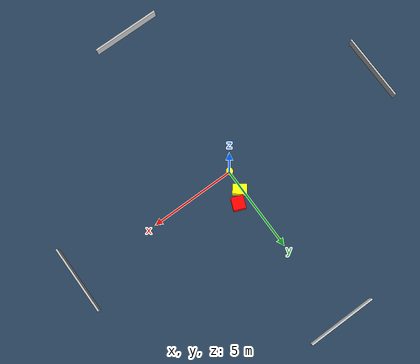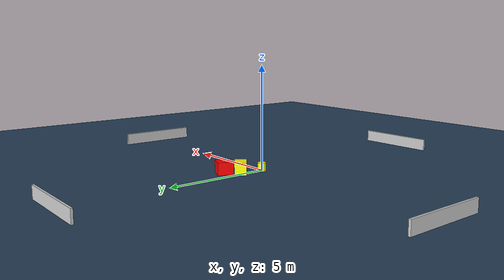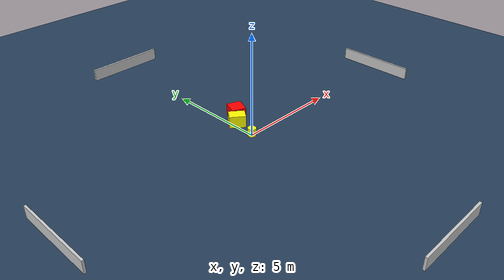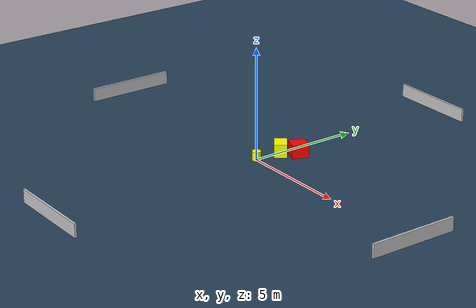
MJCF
<?xml version="1.0" ?>
<mujoco model="generated_environment">
  <option timestep="0.01" integrator="RK4" cone="elliptic"/>
  <default>
    <geom density="1"/>
  </default>
  <asset>
    <texture builtin="gradient" height="3072" name="skybox" rgb1="0.3 0.5 0.7" rgb2="0 0 0" type="skybox" width="512"/>
    <texture builtin="checker" height="300" name="groundplane" rgb1="0.2 0.3 0.4" rgb2="0.1 0.2 0.3" type="2d" width="300"/>
    <material name="groundplane" reflectance="0.2" texrepeat="5 5" texture="groundplane"/>
  </asset>
  <worldbody>
    <light dir="0 0 -1" directional="true" pos="0 0 1.5"/>
    <geom condim="3" friction="0.5 0.005 0.001" material="groundplane" name="floor" pos="0 0 0" size="0 0 0.05" type="plane"/>
    <body name="walls">
      <geom name="wall_1" condim="4" pos="-10.0 0.0 0.3" rgba="0.800000011920929 0.800000011920929 0.800000011920929 1.0" size="0.05 2.0 0.3" type="box"/>
      <geom name="wall_2" condim="4" pos="10.0 0.0 0.3" rgba="0.800000011920929 0.800000011920929 0.800000011920929 1.0" size="0.05 2.0 0.3" type="box"/>
      <geom name="wall_3" condim="4" pos="0.0 -10.0 0.3" rgba="0.800000011920929 0.800000011920929 0.800000011920929 1.0" size="2.0 0.05 0.3" type="box"/>
      <geom name="wall_4" condim="4" pos="0.0 10.0 0.3" rgba="0.800000011920929 0.800000011920929 0.800000011920929 1.0" size="2.0 0.05 0.3" type="box"/>
    </body>
    <body name="robot">
      <joint name="joint_x" type="slide" pos="0 0 0" axis="1 0 0"/>
      <joint name="joint_y" type="slide" pos="0 0 0" axis="0 1 0"/>
      <geom name="robot" type="cylinder" pos="0.0 0.0 0.2" size="0.2 0.2 0.0" mass="5.0" friction="1.0 0.005 0.0001" condim="4" rgba="1.0 1.0 0.0 1.0"/>
    </body>
    <body name="obstacle_1_movable">
      <geom name="obstacle_1_movable" condim="4" pos="0.16374388408208643 1.1503987175511818 0.3" euler="0 0 232.7444356537614" friction="0.0 0.005 0.001" rgba="1.0 1.0 0.0 1.0" size="0.2806141671628177 0.39518310890787023 0.3" type="box" mass="0.1"/>
      <joint type="free"/>
    </body>
    <body name="obstacle_2_static">
      <geom name="obstacle_2_static" condim="4" pos="0.6697031921456418 1.7197206787160921 0.3" euler="0 0 157.4135558604485" friction="0.0 0.005 0.001" rgba="1.0 0.0 0.0 1.0" size="0.3547407278024977 0.370110630835542 0.3" type="box"/>
    </body>
  </worldbody>
  <actuator>
    <motor name="actuator_x" joint="joint_x" gear="1" ctrlrange="-1 1"/>
    <motor name="actuator_y" joint="joint_y" gear="1" ctrlrange="-1 1"/>
  </actuator>
</mujoco>
